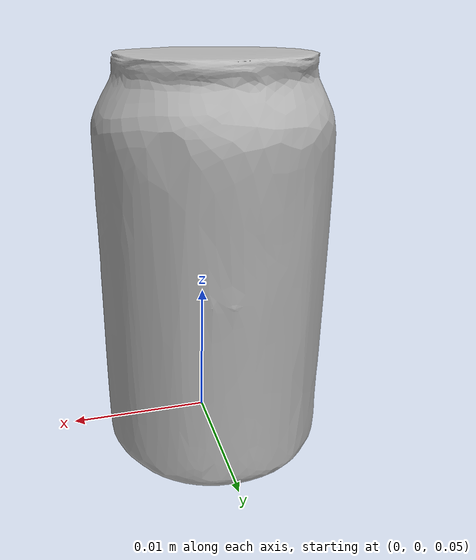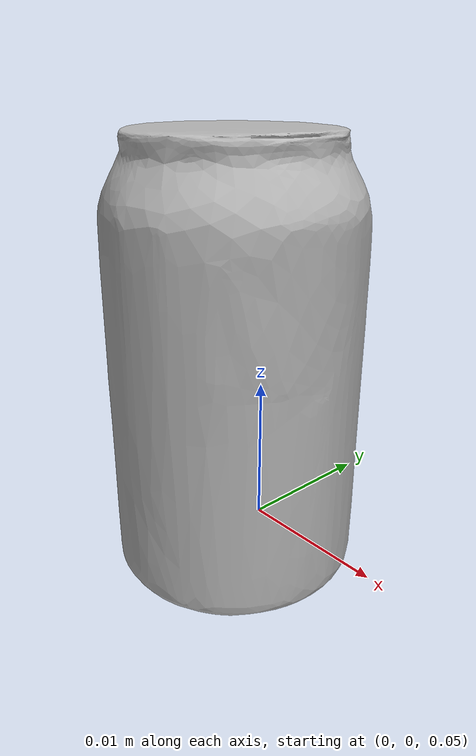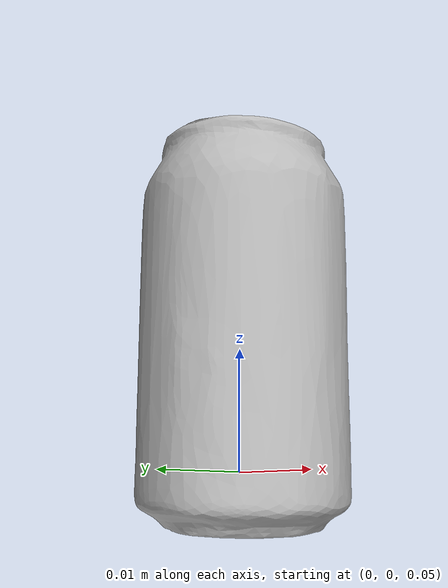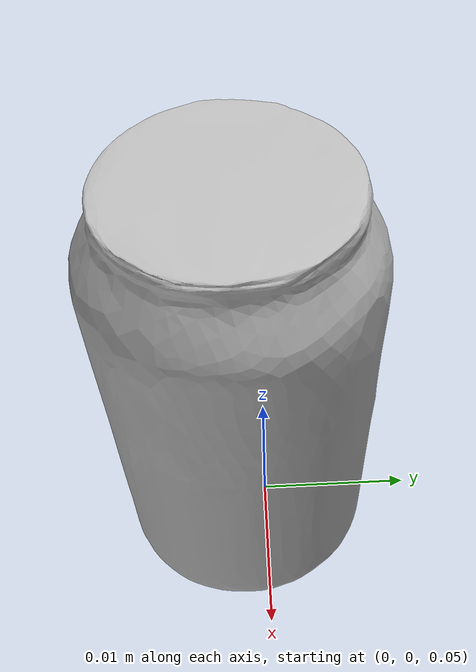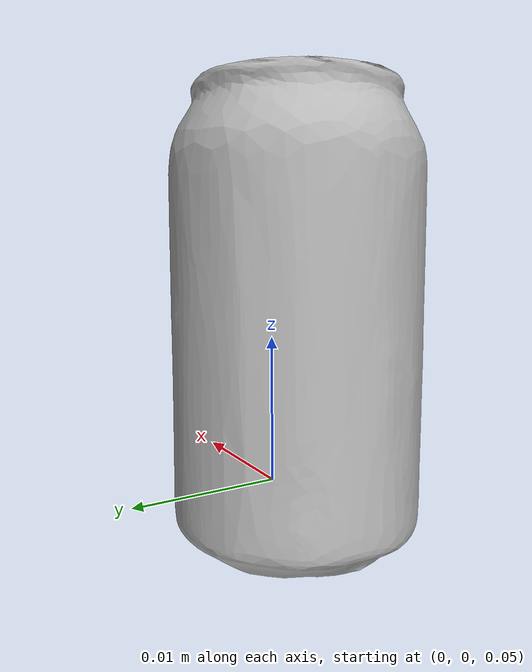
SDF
<?xml version="1.0" ?>
<sdf version="1.5">
  <model name="coke_can">
    <link name="link">
      <inertial>
       <mass>0.00390</mass>
        <inertia>
          <ixx>0.00058</ixx>
          <ixy>0</ixy>
          <ixz>0</ixz>
          <iyy>0.00058</iyy>
          <iyz>0</iyz>
          <izz>0.00019</izz>
        </inertia>
      </inertial>
      <collision name="collision">
        <geometry>
          <mesh>
            <uri>model://coke_can/meshes/coke_can.dae</uri>
             <scale>0.25 0.25 0.25</scale>
          </mesh>

        </geometry>
        <mu1>100</mu1>
        <mu2>100</mu2>
        <kp>1000000.0</kp>
        <kd>100000.0</kd>
        <slip1>0</slip1>
        <slip2>0</slip2>
        <minDepth>0.001</minDepth>
        <maxVel>0</maxVel>
        <torsional>
            <ode>
                <coefficient>1000</coefficient>
                <slip>0</slip>
            </ode>
        </torsional>
        <surface>

          <friction>
            <ode>
              <mu>100.0</mu>
              <mu2>100.0</mu2>
            </ode>
          </friction>
          <contact>
            <mu1>100</mu1>
            <mu2>100</mu2>
            <kp>1000000.0</kp>
            <kd>100000.0</kd>
            <slip1>0</slip1>
            <slip2>0</slip2>
            <maxVel>0</maxVel>
            <torsional>
                <ode>
                    <coefficient>1000</coefficient>
                    <slip>0</slip>
                </ode>
            </torsional>
            <ode>
              <mu1>100</mu1>
              <mu2>100</mu2>
              <kp>1000000.0</kp>
              <kd>100000.0</kd>
              <slip1>0</slip1>
              <slip2>0</slip2>
              <minDepth>0.001</minDepth>
              <maxVel>0</maxVel>
            </ode>
          </contact>
        </surface>
      </collision>
      <visual name="visual">

        <geometry>

          <mesh>
            <uri>model://coke_can/meshes/coke_can.dae</uri>
             <scale>0.25 0.25 0.25</scale>
          </mesh>

        </geometry>
      </visual>
    </link>
  </model>
</sdf>
